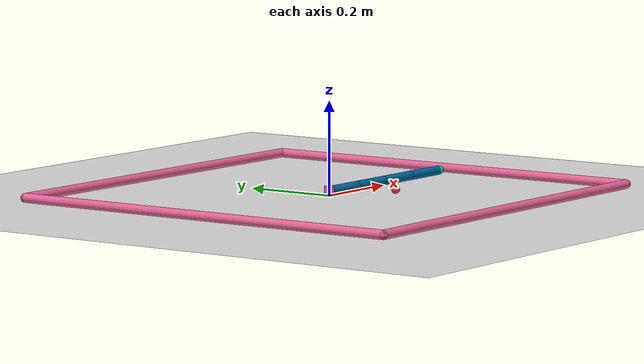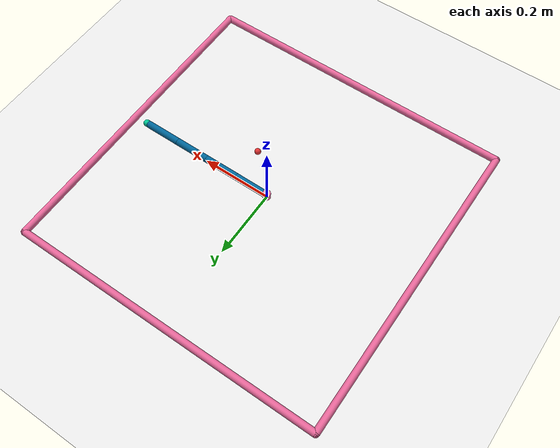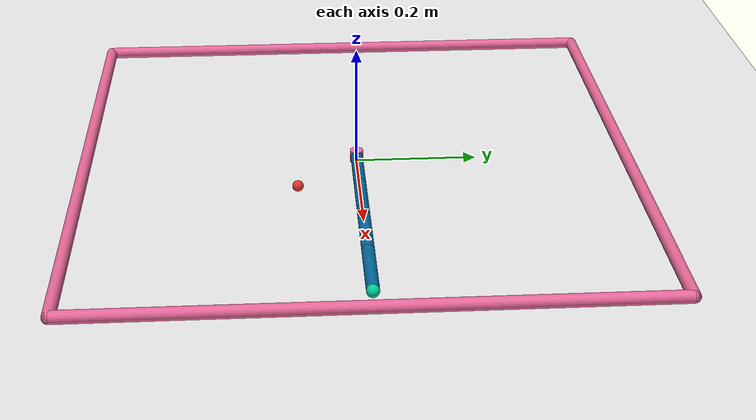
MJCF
<mujoco model="modified_reacher">
  <compiler angle="radian" inertiafromgeom="true"/>
  <default>
    <joint armature="1" damping="1" limited="true"/>
    <geom contype="0" friction="1 0.1 0.1" rgba="0.7 0.7 0 1"/>
  </default>
  <option gravity="0 0 -9.81" integrator="RK4" timestep="0.01"/>

  <worldbody>
    <geom conaffinity="0" contype="0" name="ground" pos="0 0 0" rgba="0.9 0.9 0.9 1" size="1 1 10" type="plane"/>
    <geom conaffinity="0" fromto="-0.45 -0.45 .01 0.45 -0.45 .01" name="sideS" rgba="0.9 0.4 0.6 1" size=".01" type="capsule"/>
    <geom conaffinity="0" fromto=" 0.45 -0.45 .01 0.45 0.45 .01" name="sideE" rgba="0.9 0.4 0.6 1" size=".01" type="capsule"/>
    <geom conaffinity="0" fromto="-0.45 0.45 .01 0.45 0.45 .01" name="sideN" rgba="0.9 0.4 0.6 1" size=".01" type="capsule"/>
    <geom conaffinity="0" fromto="-0.45 -0.45 .01 -0.45 0.45 .01" name="sideW" rgba="0.9 0.4 0.6 1" size=".01" type="capsule"/>

    <geom conaffinity="0" contype="0" fromto="0 0 0 0 0 0.02" name="root" rgba="0.9 0.4 0.6 1" size=".011" type="cylinder"/>
    <body name="rootBody" pos="0 0 .01">
      <geom fromto="0 0 0 0.1 0 0" name="rootPod" rgba="0.0 0.4 0.6 1" size=".01" type="capsule"/>
      <joint axis="0 0 1" limited="true" name="rootjoint" pos="0 0 0" range='-3.14 3.14' type="hinge"/>

      <body name="body_1" pos="0.1 0 0">
        <joint axis="0 0 1" limited="true" name="joint_1" pos="0 0 0" range="-3.0 3.0" type="hinge"/>
        <geom fromto="0 0 0 0.1 0 0" name="link_1" rgba="0.0 0.4 0.6 1" size=".01" type="capsule"/>

        <body name="body_2" pos="0.1 0 0">
          <joint axis="0 0 1" limited="true" name="joint_2" pos="0 0 0" range="-3.0 3.0" type="hinge"/>
          <geom fromto="0 0 0 0.1 0 0" name="link_2" rgba="0.0 0.4 0.6 1" size=".01" type="capsule"/>

          <body name="body_3" pos="0.1 0 0">
            <joint axis="0 0 1" limited="true" name="joint_3" pos="0 0 0" range="-3.0 3.0" type="hinge"/>
            <geom fromto="0 0 0 0.1 0 0" name="link_3" rgba="0.0 0.4 0.6 1" size=".01" type="capsule"/>

            <geom contype="0" name="fingertip" pos="0.11 0 0" rgba="0.0 0.8 0.6 1" size=".01" type="sphere"/>
            <site name="tip" pos="0.11 0 0" size="0.001 0.001"/>

          </body>
        </body>
      </body>

    </body>
    <body name="target" pos=".1 -.1 .01">
      <joint armature="0" axis="1 0 0" damping="0" limited="true" name="targetX" pos="0 0 0" range="-0.4 0.4" ref=".1" stiffness="0" type="slide"/>
      <joint armature="0" axis="0 1 0" damping="0" limited="true" name="targetY" pos="0 0 0" range="-0.4 0.4" ref="-.1" stiffness="0" type="slide"/>
      <geom conaffinity="0" contype="0" name="target" pos="0 0 0" rgba="0.9 0.2 0.2 1" size=".009" type="sphere"/>
    </body>
    <body name="indicator" pos="0 0 .01">
      <geom conaffinity="0" contype="0" name="reacherIndicator" pos="0 0 0" rgba="0 0.9 0 1" size=".001" type="sphere"/>
      <geom conaffinity="0" contype="0" name="avoiderIndicator" pos="0 0 0" rgba="0.9 0 0 1" size=".001" type="sphere"/>
    </body>
  </worldbody>
  <actuator>
    <motor ctrllimited="true" ctrlrange="-1 1" gear="200.0" joint="rootjoint"/>
    <motor ctrllimited="true" ctrlrange="-1 1" gear="200.0" joint="joint_1"/>
    <motor ctrllimited="true" ctrlrange="-1 1" gear="200.0" joint="joint_2"/>
    <motor ctrllimited="true" ctrlrange="-1 1" gear="200.0" joint="joint_3"/>
  </actuator>

</mujoco>
